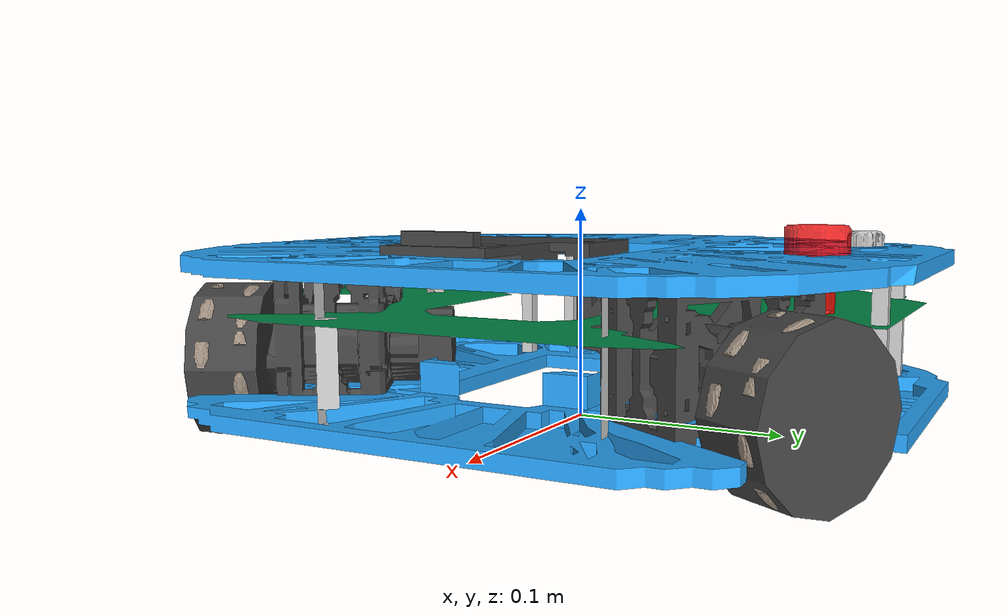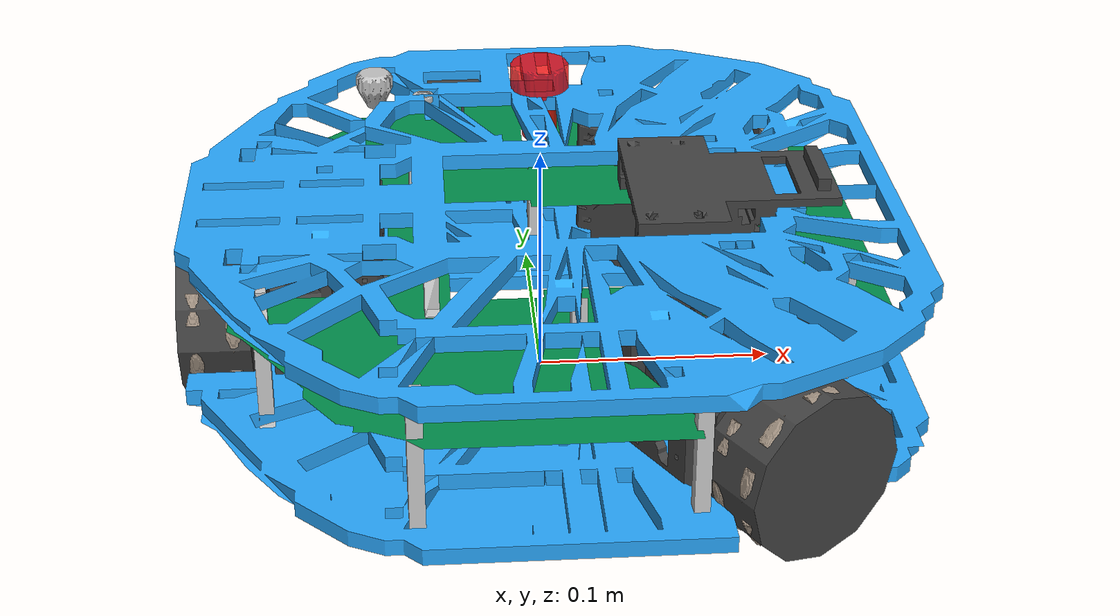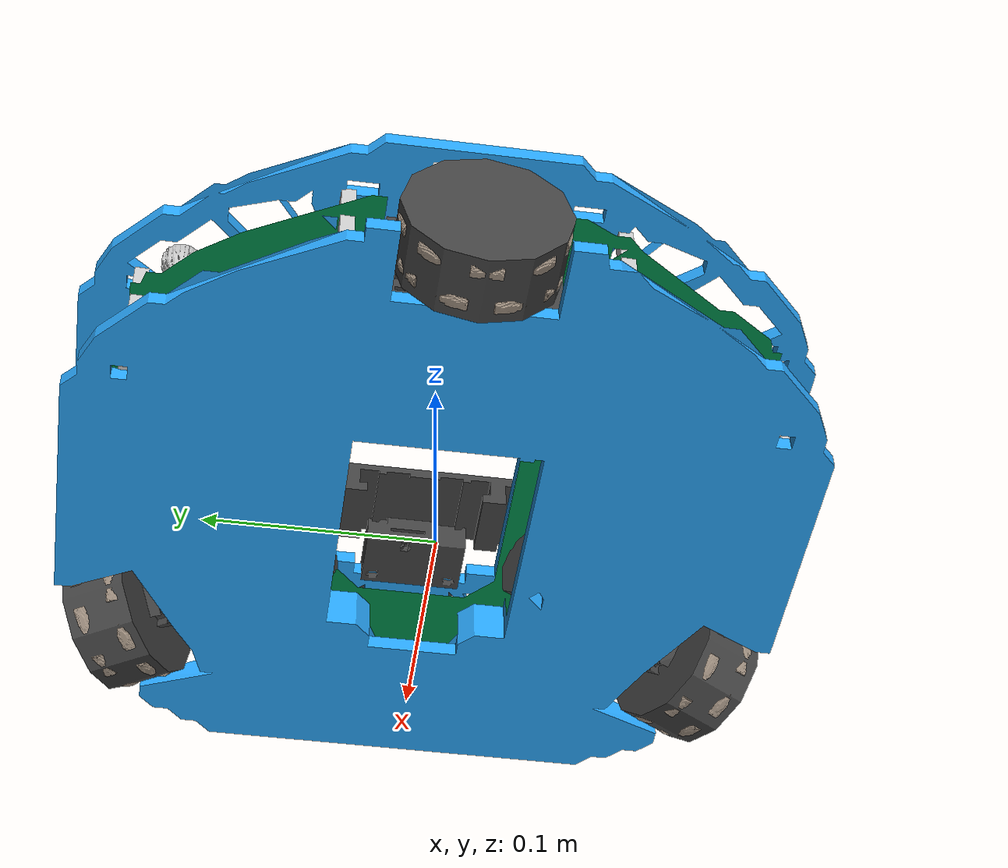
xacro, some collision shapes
<?xml version="1.0"?>
<robot xmlns:xacro="http://ros.org/wiki/xacro" name="robotont_gen3">
    <xacro:include filename="$(find robotont_description)/urdf/shared/rim.urdf.xacro"/>
    <xacro:include filename="$(find robotont_description)/urdf/gen3/motor.urdf.xacro"/>
    <xacro:include filename="$(find robotont_description)/urdf/gen3/base.urdf.xacro"/>

    <xacro:arg name="prefix" default=""/>
    <xacro:property name="prefix" value="$(arg prefix)"/>

    <xacro:arg name="main_color"  default="0.16 0.65 0.98 1.0"/>
    <xacro:property name="primary_color" value="$(arg main_color)"/>

    <xacro:property name="wheel_distance" value="0.151"/>
    <xacro:property name="wheel_center_offset" value="0.014"/>
    <xacro:property name="wheel_center_height" value="0.021"/>
    <xacro:property name="roller_color" value="0.61 0.55 0.49 1.0"/>
    <xacro:property name="rim_color" value="0.26 0.26 0.26 1.0"/>
    <xacro:property name="wheel_z_rotation_offset" value="${5.613 * (pi / 180)}"/>
    <xacro:property name="wheel_length" value="${0.0225}"/>

    <xacro:property name="frame_height" value="0.065"/>
    <xacro:property name="spacers_color" value="0.8 0.8 0.8 1.0"/>
    <xacro:property name="frame_ground_clearance" value="0.014"/>
    <xacro:property name="frame_thickness" value="0.000025"/>
    <xacro:property name="base_color" value="0.16 0.65 0.98 1.0"/>
    <xacro:property name="pcb_color" value="0 0.55 0.29 1.0"/>
    <xacro:property name="e_button_color" value="1.0 0 0 0.8"/>
    <xacro:property name="power_button_color" value="0.75 0.75 0.75 1.0"/>
    <xacro:property name="battery_module_color" value="0.26 0.26 0.26 1.0"/>

    <link name="${prefix}base_footprint"/>

    <!-- Frame module -->
    <xacro:base_macro
        color="${primary_color}"
        spacers_color="${spacers_color}"
        pcb_color="${pcb_color}"
        e_button_color="${e_button_color}"
        power_button_color="${power_button_color}"
        battery_module_color="${battery_module_color}"
        frame_height="${frame_height}"
        frame_ground_clearance="${frame_ground_clearance}"
        prefix="${prefix}"
    />

    <!-- Motor modules -->
    <xacro:motor_macro
        name="back"
        color="${rim_color}"
        angle="${-3 * pi / 2}"
        wheel_center_height="${wheel_center_height}"
        wheel_center_offset="${wheel_center_offset}"
        wheel_length="${wheel_length}"
        frame_ground_clearance="${frame_ground_clearance}"
        frame_thickness="${frame_thickness}"
        distance="${-wheel_distance}"
        prefix="${prefix}"
    />

    <xacro:motor_macro
        name="right"
        color="${rim_color}"
        angle="${5 * pi / 6}"
        z_rotation="${pi}"
        position_offset="${-1}"
        wheel_center_offset="${wheel_center_offset}"
        wheel_center_height="${wheel_center_height}"
        wheel_length="${-wheel_length}"
        frame_ground_clearance="${frame_ground_clearance}"
        frame_thickness="${frame_thickness}"
        distance="${wheel_distance}"
        prefix="${prefix}"
    />

    <xacro:motor_macro
        name="left"
        color="${rim_color}"
        angle="${7 * pi / 6}"
        wheel_center_offset="${wheel_center_offset}"
        wheel_center_height="${wheel_center_height}"
        wheel_length="${wheel_length}"
        frame_ground_clearance="${frame_ground_clearance}"
        frame_thickness="${frame_thickness}"
        distance="${-wheel_distance}"
        prefix="${prefix}"
    />

    <!-- Wheels -->
    <xacro:rim_macro
        name="back"
        color="${rim_color}"
        roller_color="${roller_color}"
        angle="${3 * pi / 2}"
        wheel_distance="${wheel_distance}"
        wheel_center_height="${wheel_center_height}"
        wheel_center_offset="${wheel_center_offset}"
        prefix="${prefix}"
    />
    <xacro:rim_macro
        name="left"
        color="${rim_color}"
        roller_color="${roller_color}"
        angle="${5 * pi / 6}"
        wheel_distance="${wheel_distance}"
        wheel_center_height="${wheel_center_height}"
        wheel_center_offset="${wheel_center_offset}"
        prefix="${prefix}"

    />
    <xacro:rim_macro
        name="right"
        color="${rim_color}"
        roller_color="${roller_color}"
        angle="${7 * pi / 6}"
        flip_axis="-1"
        wheel_distance="${-wheel_distance}"
        wheel_center_height="${wheel_center_height}"
        wheel_center_offset="${wheel_center_offset}"
        prefix="${prefix}"
    />
</robot>

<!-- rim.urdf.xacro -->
<robot
    xmlns:xacro="http://ros.org/wiki/xacro">
    <xacro:include filename="$(find robotont_description)/urdf/shared/roller.urdf.xacro"/>

    <xacro:property name="roller_radial_dist" value="0.0295" />
    <xacro:property name="roller_z_distance" value="0.008" />
    <xacro:property name="roller_init_angle" value="0" />
    <xacro:property name="wheel_height_offset" value="${wheel_center_height / 2}"/>

    <xacro:macro name="rim_macro" params="
        name
        color
        roller_color
        angle
        flip_axis:=1
        wheel_distance
        wheel_center_height
        wheel_center_offset:=0
        prefix
    ">
        <link name="${prefix}rim_${name}_link">
            <visual>
                <geometry>
                    <mesh filename="file://$(find robotont_description)/meshes/shared/2.75rim.STL"/>
                </geometry>
                <material name="rim_${name}_material">
                    <color rgba="${color}"/>
                </material>
            </visual>
            <collision>
                <geometry>
                    <cylinder radius="0.035" length="0.03"/>
                </geometry>
            </collision>
            <inertial>
                <origin xyz="0 ${wheel_height_offset} 0"/>
                <mass value="0.00835758"/>
                <inertia
                    ixx="6.63684e-07"
                    ixy="0"
                    ixz="0"
                    iyy="6.63684e-07"
                    iyz="0"
                    izz="9.40333e-07"
                />
            </inertial>
        </link>

        <joint name="${prefix}rim_${name}_joint" type="continuous">
            <parent link="${prefix}base_link" />
            <child link="${prefix}rim_${name}_link" />
            <axis xyz="0 0 ${flip_axis}"/>
            <origin
                xyz="${wheel_center_offset + (wheel_distance * sin(angle))} ${ -wheel_distance * cos(angle)} ${wheel_center_height + wheel_height_offset}"
                rpy="${pi/2} 0 ${angle + pi}"
            />
            <dynamics damping="0.1"/>
        </joint>

        <!-- Front rollers -->
        <xacro:roller_macro
            parent="${name}"
            color="${roller_color}"
            radial_dist="${roller_radial_dist}"
            z_distance="${roller_z_distance}"
            z_distance_reflect="-1"
            init_angle="${roller_init_angle}"
            no_of_roller="0"
            prefix="${prefix}"
        />
        <xacro:roller_macro
            parent="${name}"
            color="${roller_color}"
            radial_dist="${roller_radial_dist}"
            z_distance="${roller_z_distance}"
            z_distance_reflect="-1"
            init_angle="${roller_init_angle}"
            no_of_roller="1"
            prefix="${prefix}"
        />
        <xacro:roller_macro
            parent="${name}"
            color="${roller_color}"
            radial_dist="${roller_radial_dist}"
            z_distance="${roller_z_distance}"
            z_distance_reflect="-1"
            init_angle="${roller_init_angle}"
            no_of_roller="2"
            prefix="${prefix}"
        />
        <xacro:roller_macro
            parent="${name}"
            color="${roller_color}"
            radial_dist="${roller_radial_dist}"
            z_distance="${roller_z_distance}"
            z_distance_reflect="-1"
            init_angle="${roller_init_angle}"
            no_of_roller="3"
            prefix="${prefix}"
        />
        <xacro:roller_macro
            parent="${name}"
            color="${roller_color}"
            radial_dist="${roller_radial_dist}"
            z_distance="${roller_z_distance}"
            z_distance_reflect="-1"
            init_angle="${roller_init_angle}"
            no_of_roller="4"
            prefix="${prefix}"
        />
        <xacro:roller_macro
            parent="${name}"
            color="${roller_color}"
            radial_dist="${roller_radial_dist}"
            z_distance="${roller_z_distance}"
            z_distance_reflect="-1"
            init_angle="${roller_init_angle}"
            no_of_roller="5"
            prefix="${prefix}"
        />
        <xacro:roller_macro
            parent="${name}"
            color="${roller_color}"
            radial_dist="${roller_radial_dist}"
            z_distance="${roller_z_distance}"
            z_distance_reflect="-1"
            init_angle="${roller_init_angle}"
            no_of_roller="6"
            prefix="${prefix}"
        />
        <xacro:roller_macro
            parent="${name}"
            color="${roller_color}"
            radial_dist="${roller_radial_dist}"
            z_distance="${roller_z_distance}"
            z_distance_reflect="-1"
            init_angle="${roller_init_angle}"
            no_of_roller="7"
            prefix="${prefix}"
        />
        <xacro:roller_macro
            parent="${name}"
            color="${roller_color}"
            radial_dist="${roller_radial_dist}"
            z_distance="${roller_z_distance}"
            z_distance_reflect="-1"
            init_angle="${roller_init_angle}"
            no_of_roller="8"
            prefix="${prefix}"
        />
        <!-- Back rollers -->
        <xacro:roller_macro
            parent="${name}"
            color="${roller_color}"
            radial_dist="${roller_radial_dist}"
            z_distance="${roller_z_distance}"
            z_distance_reflect="1"
            init_angle="${roller_init_angle}"
            no_of_roller="0"
            prefix="${prefix}"
        />
        <xacro:roller_macro
            parent="${name}"
            color="${roller_color}"
            radial_dist="${roller_radial_dist}"
            z_distance="${roller_z_distance}"
            z_distance_reflect="1"
            init_angle="${roller_init_angle}"
            no_of_roller="1"
            prefix="${prefix}"
        />
        <xacro:roller_macro
            parent="${name}"
            color="${roller_color}"
            radial_dist="${roller_radial_dist}"
            z_distance="${roller_z_distance}"
            z_distance_reflect="1"
            init_angle="${roller_init_angle}"
            no_of_roller="2"
            prefix="${prefix}"
        />
        <xacro:roller_macro
            parent="${name}"
            color="${roller_color}"
            radial_dist="${roller_radial_dist}"
            z_distance="${roller_z_distance}"
            z_distance_reflect="1"
            init_angle="${roller_init_angle}"
            no_of_roller="3"
            prefix="${prefix}"
        />
        <xacro:roller_macro
            parent="${name}"
            color="${roller_color}"
            radial_dist="${roller_radial_dist}"
            z_distance="${roller_z_distance}"
            z_distance_reflect="1"
            init_angle="${roller_init_angle}"
            no_of_roller="4"
            prefix="${prefix}"
        />
        <xacro:roller_macro
            parent="${name}"
            color="${roller_color}"
            radial_dist="${roller_radial_dist}"
            z_distance="${roller_z_distance}"
            z_distance_reflect="1"
            init_angle="${roller_init_angle}"
            no_of_roller="5"
            prefix="${prefix}"
        />
        <xacro:roller_macro
            parent="${name}"
            color="${roller_color}"
            radial_dist="${roller_radial_dist}"
            z_distance="${roller_z_distance}"
            z_distance_reflect="1"
            init_angle="${roller_init_angle}"
            no_of_roller="6"
            prefix="${prefix}"
        />
        <xacro:roller_macro
            parent="${name}"
            color="${roller_color}"
            radial_dist="${roller_radial_dist}"
            z_distance="${roller_z_distance}"
            z_distance_reflect="1"
            init_angle="${roller_init_angle}"
            no_of_roller="7"
            prefix="${prefix}"
        />
        <xacro:roller_macro
            parent="${name}"
            color="${roller_color}"
            radial_dist="${roller_radial_dist}"
            z_distance="${roller_z_distance}"
            z_distance_reflect="1"
            init_angle="${roller_init_angle}"
            no_of_roller="8"
            prefix="${prefix}"
        />
    </xacro:macro>
</robot>

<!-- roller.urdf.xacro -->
<robot
    xmlns:xacro="http://ros.org/wiki/xacro">
    <xacro:macro
		name="roller_macro"
		params="parent color radial_dist z_distance z_distance_reflect init_angle no_of_roller prefix"
	>
        <xacro:if value="${z_distance_reflect==-1}">
            <xacro:property name="name" value="front_${no_of_roller}" />
            <xacro:property name="offset" value="0" />
        </xacro:if>
        <xacro:unless value="${z_distance_reflect==-1}">
            <xacro:property name="name" value="back_${no_of_roller}" />
            <xacro:property name="offset" value="${pi}" />
        </xacro:unless>
        <link name="${prefix}roller_${name}_rim_${parent}_link">
            <visual>
                <geometry>
                    <mesh scale="0.001 0.001 0.001" filename="file://$(find robotont_description)/meshes/shared/2.75roller.STL"/>
                </geometry>
                <material name="roller_material">
                    <color rgba="${color}"/>
                </material>
            </visual>
        </link>
        <joint name="${prefix}roller_${name}_rim_${parent}_joint" type="fixed">
            <parent link="${prefix}rim_${parent}_link"/>
            <child link="${prefix}roller_${name}_rim_${parent}_link"/>
            <origin
				xyz="${radial_dist*sin(-1*z_distance_reflect*(init_angle+offset+no_of_roller*2*pi/9))} ${-radial_dist*cos(-1*z_distance_reflect*(init_angle+offset+no_of_roller*2*pi/9))} ${z_distance*z_distance_reflect}"
				rpy="0 0 ${-1*z_distance_reflect*(init_angle+no_of_roller*2*pi/9)}"
			/>
        </joint>
    </xacro:macro>
</robot>

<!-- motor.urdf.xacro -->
<robot
    xmlns:xacro="http://ros.org/wiki/xacro">
    <xacro:property name="length" value="0.0725"/>

    <xacro:macro name="motor_macro" params="
        name
        color
        angle
        z_rotation:=0
        position_offset:=1
        wheel_center_offset
        wheel_center_height
        wheel_length
        frame_ground_clearance
        frame_thickness
        distance
        prefix
    ">
        <xacro:property name="ground_clearance" value="${1.5 * wheel_center_height + frame_ground_clearance + frame_thickness}"/>
        <xacro:property name="distance_from_center" value="${distance + (wheel_length / 2) + ((length * position_offset) / 2)}"/>

        <link name="${prefix}motor_${name}_link">
            <visual>
                <geometry>
                    <mesh filename="package://robotont_description/meshes/gen3/motor_module2.STL"/>
                </geometry>
                <material name="motor_${name}_material">
                    <color rgba="${color}"/>
                </material>
            </visual>
        </link>

        <joint name="motor_${name}_joint" type="fixed">
            <parent link="${prefix}base_link"/>
            <child link="${prefix}motor_${name}_link"/>
            <axis xyz="0 0 1"/>
            <origin
                xyz="${distance_from_center * sin(angle) + wheel_center_offset} ${-distance_from_center * cos(angle)} ${ground_clearance}"
                rpy="${pi/2} 0 ${angle + pi + z_rotation}"
            />
        </joint>
    </xacro:macro>
</robot>

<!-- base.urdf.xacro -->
<robot xmlns:xacro="http://ros.org/wiki/xacro">
    <xacro:property name="pcb_offset" value="0.044"/>
    <xacro:property name="e_button_offset" value="0.0035"/>

    <xacro:macro name="base_macro" params="
        color
        spacers_color
        pcb_color
        e_button_color
        power_button_color
        battery_module_color
        frame_height
        frame_ground_clearance
        prefix
    ">
        <xacro:property name="frame_elevation" value="${frame_height / 2 + frame_ground_clearance}"/>

        <!-- Frame -->
        <link name="${prefix}base_link">
            <visual>
                <origin rpy="0 0 ${pi/2}" xyz="0 0 ${frame_elevation}"/>
                <geometry>
                    <mesh filename="package://robotont_description/meshes/gen3/frame_module_pla.STL"/>
                </geometry>
                <material name="base_material">
                    <color rgba="${color}"/>
                </material>
            </visual>
            <collision>
                <geometry>
                    <mesh filename="package://robotont_description/meshes/shared/collision_body.STL"/>
                </geometry>
                <origin rpy="${pi/2} 0 ${pi/2}" xyz="0 0 ${frame_elevation}"/>
            </collision>
            <inertial>
                <mass value="3"/>
                <inertia
                    ixx="0.02462503"
                    ixy="0"
                    ixz="0"
                    iyy="0.02082228"
                    iyz="0"
                    izz="0.04324237"
                />
            </inertial>
        </link>

        <joint name="${prefix}base_joint" type="fixed">
            <parent link="${prefix}base_footprint"/>
            <child link="${prefix}base_link"/>
            <origin xyz="0 0 0" rpy="0 0 0"/>
        </joint>

        <link name="${prefix}base_link_spacers">
            <visual>
                <origin rpy="0 0 ${pi/2}" xyz="0 0 ${frame_elevation}"/>
                <geometry>
                    <mesh filename="package://robotont_description/meshes/gen3/frame_module_spacers.STL"/>
                </geometry>
                <material name="spacers_material">
                    <color rgba="${spacers_color}"/>
                </material>
            </visual>
        </link>

        <joint name="${prefix}base_joint_spacers" type="fixed">
            <parent link="${prefix}base_footprint"/>
            <child link="${prefix}base_link_spacers"/>
            <origin xyz="0 0 0" rpy="0 0 ${frame_elevation}"/>
        </joint>

        <!-- PCB -->
        <link name="${prefix}pcb_link">
            <visual>
                <origin rpy="0 0 ${pi/2}" xyz="0 0 0"/>
                <geometry>
                    <mesh filename="package://robotont_description/meshes/gen3/PCB.STL"/>
                </geometry>
                <material name="pcb_material">
                    <color rgba="${pcb_color}"/>
                </material>
            </visual>
        </link>

        <joint name="${prefix}pcb_joint" type="fixed">
            <parent link="${prefix}base_link"/>
            <child link="${prefix}pcb_link"/>
            <origin xyz="0.0025 0 ${frame_ground_clearance + pcb_offset}" rpy="0 ${pi / 2} 0"/>
        </joint>

        <!-- E-button -->
        <link name="${prefix}e_button_link">
            <visual>
                <geometry>
                    <mesh filename="package://robotont_description/meshes/gen3/e_stop_button.STL"/>
                </geometry>
                <material name="e_button_material">
                    <color rgba="${e_button_color}"/>
                </material>
            </visual>
        </link>

        <joint name="e_button_joint" type="fixed">
            <parent link="${prefix}base_link"/>
            <child link="${prefix}e_button_link"/>
            <axis xyz="0 0 1"/>
            <origin
                xyz="0.0075 0.115 ${frame_ground_clearance + frame_height - e_button_offset}"
                rpy="${pi / 2} 0 ${pi / 2}"
            />
        </joint>

        <!-- Power button -->
        <link name="${prefix}power_button_link">
            <visual>
                <geometry>
                    <mesh filename="package://robotont_description/meshes/gen3/power_button.STL"/>
                </geometry>
                <material name="power_button_material">
                    <color rgba="${power_button_color}"/>
                </material>
            </visual>
        </link>

        <joint name="power_button_joint" type="fixed">
            <parent link="${prefix}base_link"/>
            <child link="${prefix}power_button_link"/>
            <axis xyz="0 0 1"/>
            <origin
                xyz="-0.0472 0.111 ${frame_ground_clearance + frame_height - 0.001}"
                rpy="${pi / 2} 0 ${pi / 2}"
            />
        </joint>

        <!-- Encoder button -->
        <link name="${prefix}encoder_button_link">
            <visual>
                <geometry>
                    <mesh filename="package://robotont_description/meshes/gen3/encoder_button.STL"/>
                </geometry>
                <material name="encoder_button_material">
                    <color rgba="${power_button_color}"/>
                </material>
            </visual>
        </link>

        <joint name="encoder_button_joint" type="fixed">
            <parent link="${prefix}base_link"/>
            <child link="${prefix}encoder_button_link"/>
            <axis xyz="0 0 1"/>
            <origin
                xyz="-0.07 0.12 ${frame_ground_clearance + frame_height - 0.007}"
                rpy="0 0 0"
            />
        </joint>

        <!-- Battery module -->
        <link name="${prefix}battery_module_link">
            <visual>
                <geometry>
                    <mesh filename="package://robotont_description/meshes/gen3/battery_module.STL"/>
                </geometry>
                <material name="battery_module_material">
                    <color rgba="${battery_module_color}"/>
                </material>
            </visual>
        </link>

        <joint name="battery_module_joint" type="fixed">
            <parent link="${prefix}base_link"/>
            <child link="${prefix}battery_module_link"/>
            <axis xyz="0 0 1"/>
            <origin
                xyz="0.08 0 ${frame_ground_clearance + frame_height + 0.0025}"
                rpy="${pi / 2} 0 ${pi / 2}"
            />
        </joint>

        <!-- OLED module -->
        <link name="${prefix}screen_module_link">
            <visual>
                <geometry>
                    <mesh filename="package://robotont_description/meshes/gen3/ssd1306.STL"/>
                </geometry>
                <material name="screen_module_material">
                    <color rgba="${battery_module_color}"/>
                </material>
            </visual>
        </link>

        <joint name="screen_module_joint" type="fixed">
            <parent link="${prefix}base_link"/>
            <child link="${prefix}screen_module_link"/>
            <axis xyz="0 0 1"/>
            <origin
                xyz="-0.0325 0.1185 ${frame_ground_clearance + frame_height-0.0015}"
                rpy="0 0 0"
            />
        </joint>
    </xacro:macro>
</robot>
